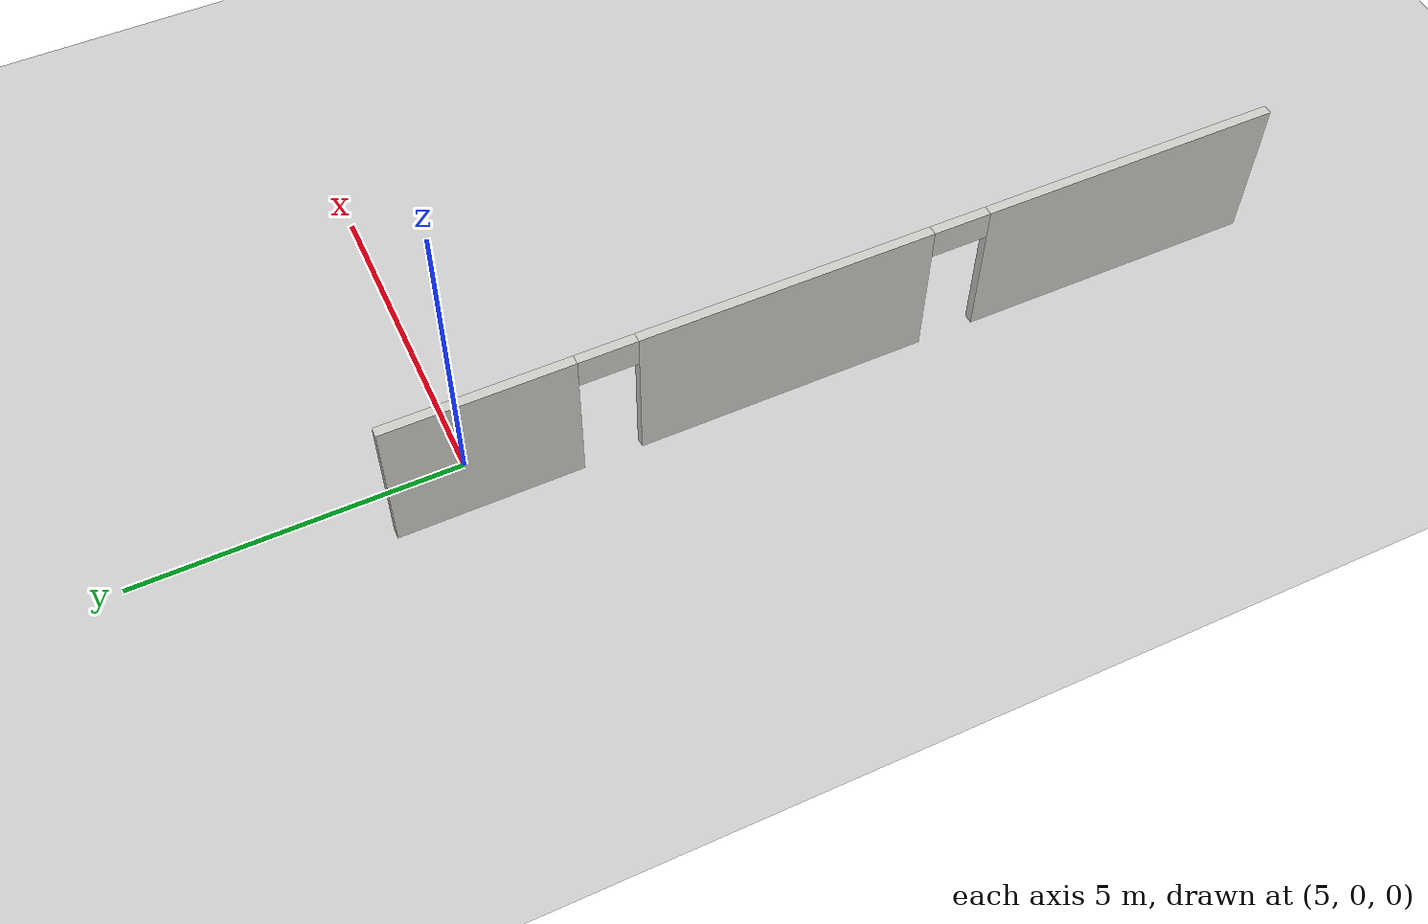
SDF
<sdf version="1.7">
 <world name="default">
  <model name="ground_plane">
   <static>1</static>
   <link name="link">
    <collision name="collision">
     <geometry><plane><normal>0 0 1</normal><size>100 100</size></plane></geometry>
     <surface>
      <contact><collide_bitmask>65535</collide_bitmask></contact>
      <friction><ode><mu>100</mu><mu2>50</mu2></ode></friction>
     </surface>
    </collision>
    <visual name="visual">
     <cast_shadows>0</cast_shadows>
     <geometry><plane><normal>0 0 1</normal><size>100 100</size></plane></geometry>
     <material>
      <script><uri>file://media/materials/scripts/gazebo.material</uri><name>Gazebo/Grey</name></script>
     </material>
    </visual>
   </link>
  </model>
  <model name="newworld">
   <link name="Wall_48">
    <pose>4.11037 -6.62501 0 0 -0 1.5708</pose>
    <visual name="Wall_48_Visual_1">
     <pose>0.963424 0 1.25 0 -0 0</pose>
     <geometry><box><size>4.57028 0.15 2.5</size></box></geometry>
     <material>
      <script><uri>file://media/materials/scripts/gazebo.material</uri><name>Gazebo/CeilingTiled</name></script>
      <ambient>0.435294 0.796078 0.67451 1</ambient>
      <shader type="pixel"/>
     </material>
     <meta><layer>0</layer></meta>
    </visual>
    <visual name="Wall_48_Visual_3">
     <pose>-1.77172 0 2.25 0 -0 0</pose>
     <geometry><box><size>0.9 0.15 0.5</size></box></geometry>
     <material>
      <script><uri>file://media/materials/scripts/gazebo.material</uri><name>Gazebo/CeilingTiled</name></script>
      <ambient>0.435294 0.796078 0.67451 1</ambient>
      <shader type="pixel"/>
     </material>
     <meta><layer>0</layer></meta>
    </visual>
    <visual name="Wall_48_Visual_4">
     <pose>3.69857 0 2.25 0 -0 0</pose>
     <geometry><box><size>0.9 0.15 0.5</size></box></geometry>
     <material>
      <script><uri>file://media/materials/scripts/gazebo.material</uri><name>Gazebo/CeilingTiled</name></script>
      <ambient>0.435294 0.796078 0.67451 1</ambient>
      <shader type="pixel"/>
     </material>
     <meta><layer>0</layer></meta>
    </visual>
    <visual name="Wall_48_Visual_2">
     <pose>5.57428 0 1.25 0 -0 0</pose>
     <geometry><box><size>2.85143 0.15 2.5</size></box></geometry>
     <material>
      <script><uri>file://media/materials/scripts/gazebo.material</uri><name>Gazebo/CeilingTiled</name></script>
      <ambient>0.435294 0.796078 0.67451 1</ambient>
      <shader type="pixel"/>
     </material>
     <meta><layer>0</layer></meta>
    </visual>
    <visual name="Wall_48_Visual_0">
     <pose>-4.61086 0 1.25 0 -0 0</pose>
     <geometry><box><size>4.77828 0.15 2.5</size></box></geometry>
     <material>
      <script><uri>file://media/materials/scripts/gazebo.material</uri><name>Gazebo/CeilingTiled</name></script>
      <ambient>0.435294 0.796078 0.67451 1</ambient>
      <shader type="pixel"/>
     </material>
     <meta><layer>0</layer></meta>
    </visual>
    <collision name="Wall_48_Collision_2">
     <pose>5.57428 0 1.25 0 -0 0</pose>
     <geometry><box><size>2.85143 0.15 2.5</size></box></geometry>
     <surface>
      <friction>
       <ode><mu>1</mu><mu2>1</mu2><fdir1>0 0 0</fdir1><slip1>0</slip1><slip2>0</slip2></ode>
       <torsional>
        <coefficient>1</coefficient>
        <patch_radius>0</patch_radius>
        <surface_radius>0</surface_radius>
        <use_patch_radius>1</use_patch_radius>
        <ode><slip>0</slip></ode>
       </torsional>
      </friction>
      <bounce><restitution_coefficient>0</restitution_coefficient><threshold>1e+06</threshold></bounce>
      <contact>
       <collide_without_contact>0</collide_without_contact>
       <collide_without_contact_bitmask>1</collide_without_contact_bitmask>
       <collide_bitmask>1</collide_bitmask>
       <ode>
        <soft_cfm>0</soft_cfm>
        <soft_erp>0.2</soft_erp>
        <kp>1e+13</kp>
        <kd>1</kd>
        <max_vel>0.01</max_vel>
        <min_depth>0</min_depth>
       </ode>
       <bullet>
        <split_impulse>1</split_impulse>
        <split_impulse_penetration_threshold>-0.01</split_impulse_penetration_threshold>
        <soft_cfm>0</soft_cfm>
        <soft_erp>0.2</soft_erp>
        <kp>1e+13</kp>
        <kd>1</kd>
       </bullet>
      </contact>
     </surface>
    </collision>
    <collision name="Wall_48_Collision_1">
     <pose>0.963424 0 1.25 0 -0 0</pose>
     <geometry><box><size>4.57028 0.15 2.5</size></box></geometry>
     <surface>
      <friction>
       <ode><mu>1</mu><mu2>1</mu2><fdir1>0 0 0</fdir1><slip1>0</slip1><slip2>0</slip2></ode>
       <torsional>
        <coefficient>1</coefficient>
        <patch_radius>0</patch_radius>
        <surface_radius>0</surface_radius>
        <use_patch_radius>1</use_patch_radius>
        <ode><slip>0</slip></ode>
       </torsional>
      </friction>
      <bounce><restitution_coefficient>0</restitution_coefficient><threshold>1e+06</threshold></bounce>
      <contact>
       <collide_without_contact>0</collide_without_contact>
       <collide_without_contact_bitmask>1</collide_without_contact_bitmask>
       <collide_bitmask>1</collide_bitmask>
       <ode>
        <soft_cfm>0</soft_cfm>
        <soft_erp>0.2</soft_erp>
        <kp>1e+13</kp>
        <kd>1</kd>
        <max_vel>0.01</max_vel>
        <min_depth>0</min_depth>
       </ode>
       <bullet>
        <split_impulse>1</split_impulse>
        <split_impulse_penetration_threshold>-0.01</split_impulse_penetration_threshold>
        <soft_cfm>0</soft_cfm>
        <soft_erp>0.2</soft_erp>
        <kp>1e+13</kp>
        <kd>1</kd>
       </bullet>
      </contact>
     </surface>
    </collision>
    <collision name="Wall_48_Collision_3">
     <pose>-1.77172 0 2.25 0 -0 0</pose>
     <geometry><box><size>0.9 0.15 0.5</size></box></geometry>
     <surface>
      <friction>
       <ode><mu>1</mu><mu2>1</mu2><fdir1>0 0 0</fdir1><slip1>0</slip1><slip2>0</slip2></ode>
       <torsional>
        <coefficient>1</coefficient>
        <patch_radius>0</patch_radius>
        <surface_radius>0</surface_radius>
        <use_patch_radius>1</use_patch_radius>
        <ode><slip>0</slip></ode>
       </torsional>
      </friction>
      <bounce><restitution_coefficient>0</restitution_coefficient><threshold>1e+06</threshold></bounce>
      <contact>
       <collide_without_contact>0</collide_without_contact>
       <collide_without_contact_bitmask>1</collide_without_contact_bitmask>
       <collide_bitmask>1</collide_bitmask>
       <ode>
        <soft_cfm>0</soft_cfm>
        <soft_erp>0.2</soft_erp>
        <kp>1e+13</kp>
        <kd>1</kd>
        <max_vel>0.01</max_vel>
        <min_depth>0</min_depth>
       </ode>
       <bullet>
        <split_impulse>1</split_impulse>
        <split_impulse_penetration_threshold>-0.01</split_impulse_penetration_threshold>
        <soft_cfm>0</soft_cfm>
        <soft_erp>0.2</soft_erp>
        <kp>1e+13</kp>
        <kd>1</kd>
       </bullet>
      </contact>
     </surface>
    </collision>
    <collision name="Wall_48_Collision_0">
     <pose>-4.61086 0 1.25 0 -0 0</pose>
     <geometry><box><size>4.77828 0.15 2.5</size></box></geometry>
     <surface>
      <friction>
       <ode><mu>1</mu><mu2>1</mu2><fdir1>0 0 0</fdir1><slip1>0</slip1><slip2>0</slip2></ode>
       <torsional>
        <coefficient>1</coefficient>
        <patch_radius>0</patch_radius>
        <surface_radius>0</surface_radius>
        <use_patch_radius>1</use_patch_radius>
        <ode><slip>0</slip></ode>
       </torsional>
      </friction>
      <bounce><restitution_coefficient>0</restitution_coefficient><threshold>1e+06</threshold></bounce>
      <contact>
       <collide_without_contact>0</collide_without_contact>
       <collide_without_contact_bitmask>1</collide_without_contact_bitmask>
       <collide_bitmask>1</collide_bitmask>
       <ode>
        <soft_cfm>0</soft_cfm>
        <soft_erp>0.2</soft_erp>
        <kp>1e+13</kp>
        <kd>1</kd>
        <max_vel>0.01</max_vel>
        <min_depth>0</min_depth>
       </ode>
       <bullet>
        <split_impulse>1</split_impulse>
        <split_impulse_penetration_threshold>-0.01</split_impulse_penetration_threshold>
        <soft_cfm>0</soft_cfm>
        <soft_erp>0.2</soft_erp>
        <kp>1e+13</kp>
        <kd>1</kd>
       </bullet>
      </contact>
     </surface>
    </collision>
    <collision name="Wall_48_Collision_4">
     <pose>3.69857 0 2.25 0 -0 0</pose>
     <geometry><box><size>0.9 0.15 0.5</size></box></geometry>
     <surface>
      <friction>
       <ode><mu>1</mu><mu2>1</mu2><fdir1>0 0 0</fdir1><slip1>0</slip1><slip2>0</slip2></ode>
       <torsional>
        <coefficient>1</coefficient>
        <patch_radius>0</patch_radius>
        <surface_radius>0</surface_radius>
        <use_patch_radius>1</use_patch_radius>
        <ode><slip>0</slip></ode>
       </torsional>
      </friction>
      <bounce><restitution_coefficient>0</restitution_coefficient><threshold>1e+06</threshold></bounce>
      <contact>
       <collide_without_contact>0</collide_without_contact>
       <collide_without_contact_bitmask>1</collide_without_contact_bitmask>
       <collide_bitmask>1</collide_bitmask>
       <ode>
        <soft_cfm>0</soft_cfm>
        <soft_erp>0.2</soft_erp>
        <kp>1e+13</kp>
        <kd>1</kd>
        <max_vel>0.01</max_vel>
        <min_depth>0</min_depth>
       </ode>
       <bullet>
        <split_impulse>1</split_impulse>
        <split_impulse_penetration_threshold>-0.01</split_impulse_penetration_threshold>
        <soft_cfm>0</soft_cfm>
        <soft_erp>0.2</soft_erp>
        <kp>1e+13</kp>
        <kd>1</kd>
       </bullet>
      </contact>
     </surface>
    </collision>
   </link>
   <static>1</static>
   <pose>0.193711 0.903984 0 0 -0 0</pose>
  </model>
 </world>
</sdf>
